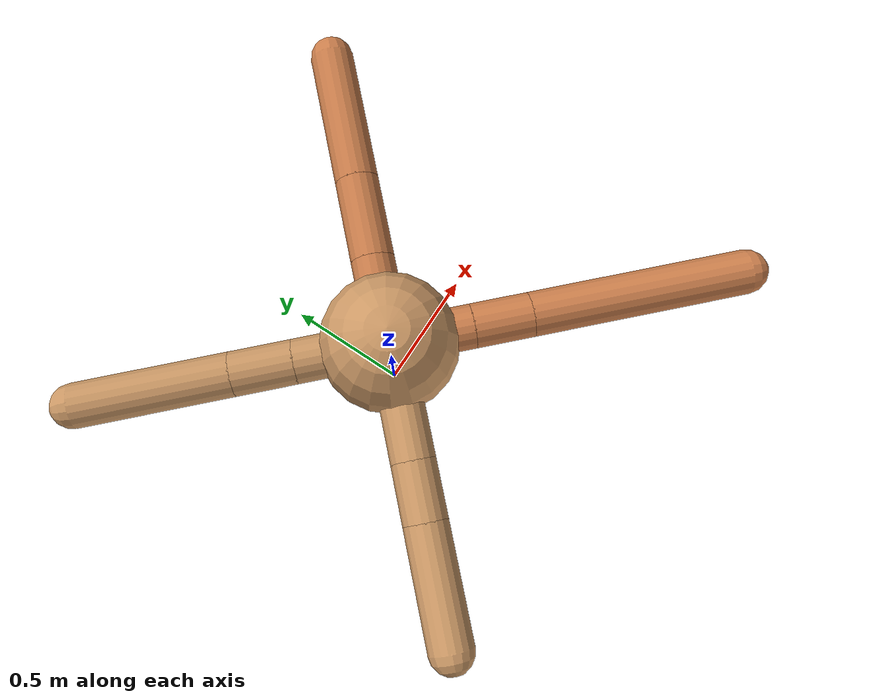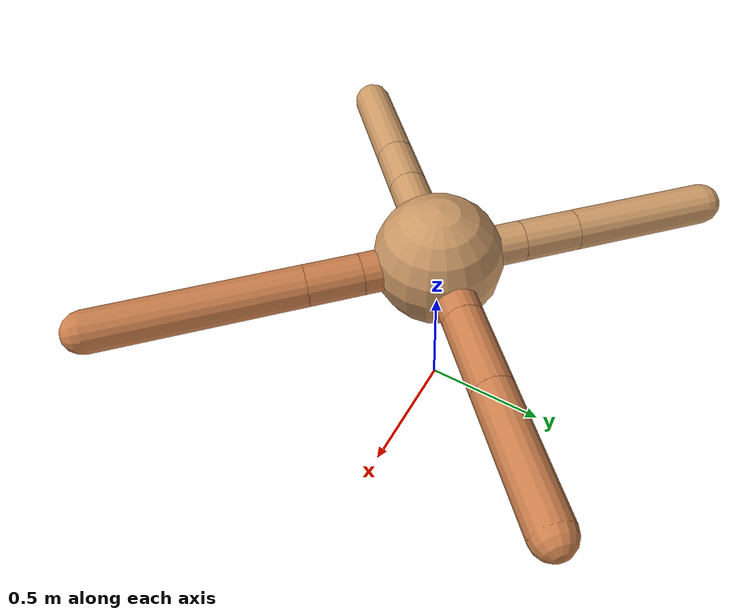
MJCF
<mujoco model="ant">
  <compiler angle="degree" coordinate="local" inertiafromgeom="true" />
  <option integrator="RK4" timestep="0.01" />
  <custom>
    <numeric data="0.0 0.0 0.55 1.0 0.0 0.0 0.0 0.0 1.0 0.0 -1.0 0.0 -1.0 0.0 1.0" name="init_qpos" />
  </custom>
  <default>
    <joint armature="1" damping="1" limited="true" />
    <geom conaffinity="0" condim="3" density="5.0" friction="1.5 0.1 0.1" margin="0.01" rgba="0.8 0.6 0.4 1" />
  </default>
  <worldbody>
    <body name="torso" pos="0 0 0.75">
      <geom name="torso_geom" pos="0 0 0" size="0.25" type="sphere" />

      <body name="front_left_leg" pos="0 0 0">
        <geom fromto="0.0 0.0 0.0 0.21831030230697232 0.21831030230697232 0.0" name="aux_1_geom" size="0.08" type="capsule" rgba=".8 .5 .3 1" />
        <body name="aux_1" pos="0.21831030230697232 0.21831030230697232 0.0">
          <joint axis="0 0 1" name="hip_1" pos="0.0 0.0 0.0" range="-40 40" type="hinge" />
          <geom fromto="0.0 0.0 0.0 0.2165247049033115 0.2165247049033115 0.0" name="left_leg_geom" size="0.08" type="capsule" rgba=".8 .5 .3 1" />
          <body pos="0.2165247049033115 0.2165247049033115 0.0" name="front_left_foot">
            <joint axis="-1 1 0" name="ankle_1" pos="0.0 0.0 0.0" range="30 100" type="hinge" />
            <geom fromto="0.0 0.0 0.0 0.35552289793609015 0.35552289793609015 0.0" name="left_ankle_geom" size="0.08" type="capsule" rgba=".8 .5 .3 1" />
          </body>
        </body>
      </body>
      <body name="front_right_leg" pos="0 0 0">
        <geom fromto="0.0 0.0 0.0 -0.2380388576804621 0.2380388576804621 0.0" name="aux_2_geom" size="0.08" type="capsule" />
        <body name="aux_2" pos="-0.2380388576804621 0.2380388576804621 0.0">
          <joint axis="0 0 1" name="hip_2" pos="0.0 0.0 0.0" range="-40 40" type="hinge" />
          <geom fromto="0.0 0.0 0.0 -0.15592511312428733 0.15592511312428733 0.0" name="right_leg_geom" size="0.08" type="capsule" />
          <body pos="-0.15592511312428733 0.15592511312428733 0.0" name="front_right_foot">
            <joint axis="1 1 0" name="ankle_2" pos="0.0 0.0 0.0" range="-100 -30" type="hinge" />
            <geom fromto="0.0 0.0 0.0 -0.39154262800348705 0.39154262800348705 0.0" name="right_ankle_geom" size="0.08" type="capsule" />
          </body>
        </body>
      </body>
      <body name="left_back_leg" pos="0 0 0">
        <geom fromto="0.0 0.0 0.0 -0.29735376813645753 -0.29735376813645753 0.0" name="aux_3_geom" size="0.08" type="capsule" />
        <body name="aux_3" pos="-0.29735376813645753 -0.29735376813645753 0.0">
          <joint axis="0 0 1" name="hip_3" pos="0.0 0.0 0.0" range="-40 40" type="hinge" />
          <geom fromto="0.0 0.0 0.0 -0.1468486262388696 -0.1468486262388696 0.0" name="back_leg_geom" size="0.08" type="capsule" />
          <body pos="-0.1468486262388696 -0.1468486262388696 0.0" name="left_back_foot">
            <joint axis="-1 1 0" name="ankle_3" pos="0.0 0.0 0.0" range="-100 -30" type="hinge" />
            <geom fromto="0.0 0.0 0.0 -0.2947127085249876 -0.2947127085249876 0.0" name="third_ankle_geom" size="0.08" type="capsule" />
          </body>
        </body>
      </body>
      <body name="right_back_leg" pos="0 0 0">
        <geom fromto="0.0 0.0 0.0 0.21183860638134916 -0.21183860638134916 0.0" name="aux_4_geom" size="0.08" type="capsule" rgba=".8 .5 .3 1" />
        <body name="aux_4" pos="0.21183860638134916 -0.21183860638134916 0.0">
          <joint axis="0 0 1" name="hip_4" pos="0.0 0.0 0.0" range="-40 40" type="hinge" />
          <geom fromto="0.0 0.0 0.0 0.14790242206008228 -0.14790242206008228 0.0" name="rightback_leg_geom" size="0.08" type="capsule" rgba=".8 .5 .3 1" />
          <body pos="0.14790242206008228 -0.14790242206008228 0.0" name="right_back_foot">
            <joint axis="1 1 0" name="ankle_4" pos="0.0 0.0 0.0" range="30 100" type="hinge" />
            <geom fromto="0.0 0.0 0.0 0.5560217586435702 -0.5560217586435702 0.0" name="fourth_ankle_geom" size="0.08" type="capsule" rgba=".8 .5 .3 1" />
          </body>
        </body>
      </body>
    </body>
  </worldbody>
  <actuator>
    <motor ctrllimited="true" ctrlrange="-1.0 1.0" joint="hip_4" gear="150" />
    <motor ctrllimited="true" ctrlrange="-1.0 1.0" joint="ankle_4" gear="150" />
    <motor ctrllimited="true" ctrlrange="-1.0 1.0" joint="hip_1" gear="150" />
    <motor ctrllimited="true" ctrlrange="-1.0 1.0" joint="ankle_1" gear="150" />
    <motor ctrllimited="true" ctrlrange="-1.0 1.0" joint="hip_2" gear="150" />
    <motor ctrllimited="true" ctrlrange="-1.0 1.0" joint="ankle_2" gear="150" />
    <motor ctrllimited="true" ctrlrange="-1.0 1.0" joint="hip_3" gear="150" />
    <motor ctrllimited="true" ctrlrange="-1.0 1.0" joint="ankle_3" gear="150" />
  </actuator>
</mujoco>
